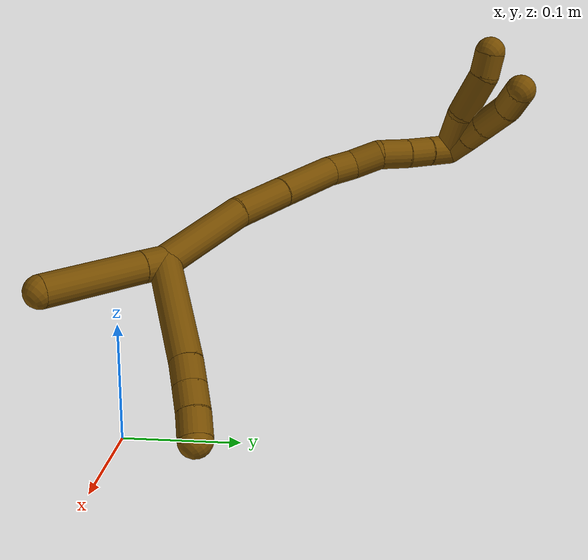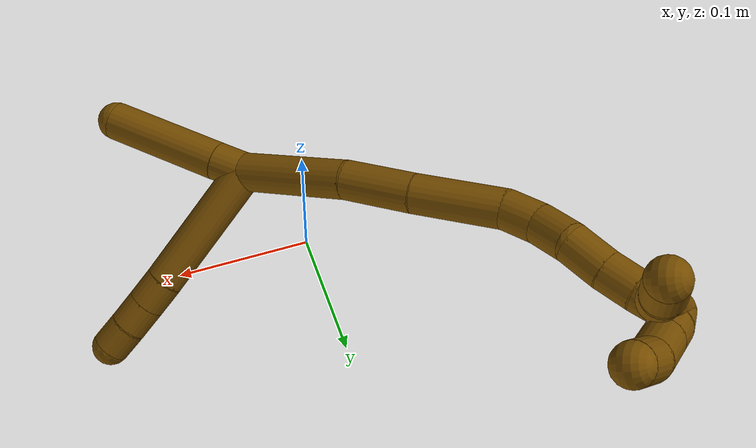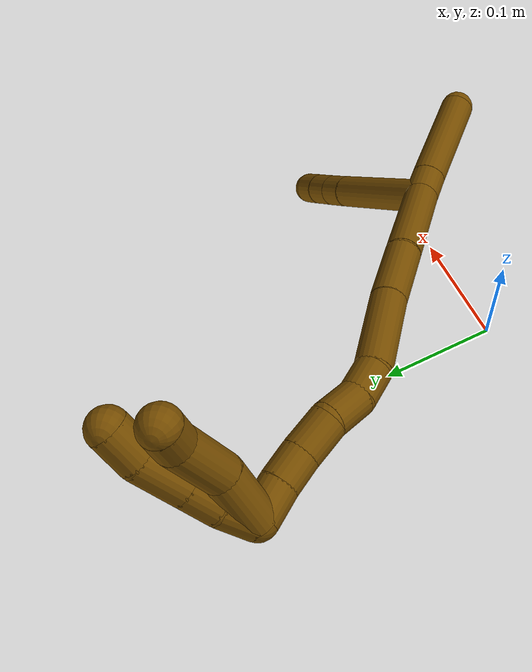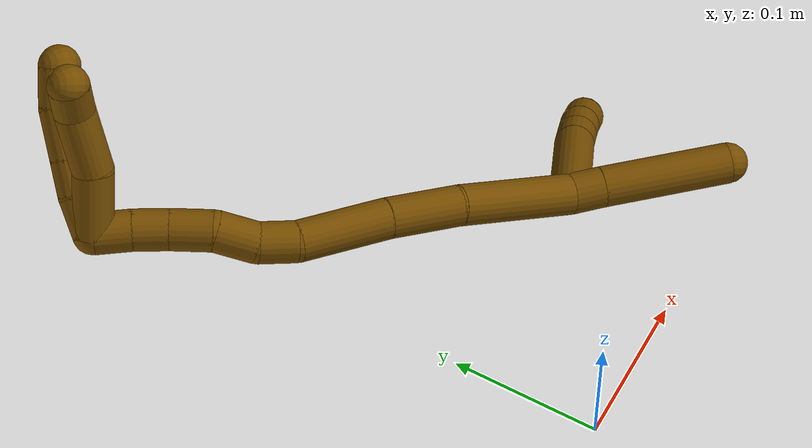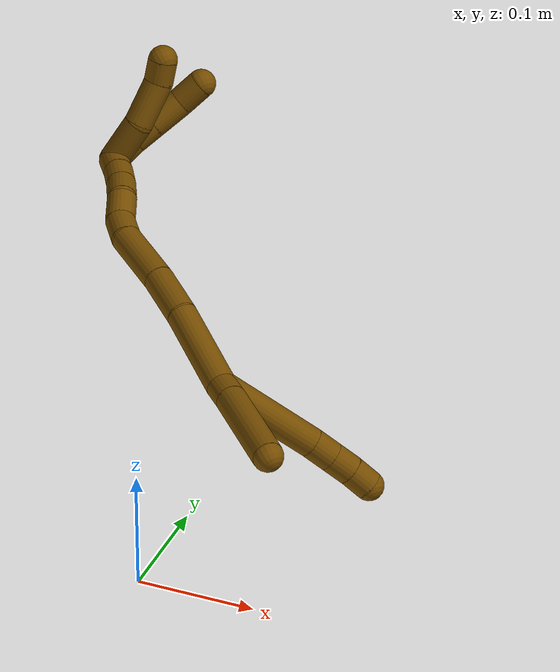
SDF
<sdf version="1.7">
 <world name="default">
  <model name="photoneo_s_sensor">
   <static>1</static>
   <pose>0 0 2 1.57079 1.57079 3.14159</pose>
   <link name="link">
    <inertial><mass>0.1</mass></inertial>
    <sensor name="sensor" type="depth">
     <update_rate>30</update_rate>
     <camera>
      <horizontal_fov>1.22</horizontal_fov>
      <image><width>1920</width><height>1200</height><format>B8G8R8</format></image>
      <clip><near>0.1</near><far>4</far></clip>
      <depth_camera><output>points</output></depth_camera>
     </camera>
     <plugin name="camera_plugin" filename="libgazebo_ros_depth_camera.so">
      <baseline>0.2</baseline>
      <alwaysOn>1</alwaysOn>
      <updateRate>0.0</updateRate>
      <cameraName>camera_ir</cameraName>
      <imageTopicName>/camera/color/image_raw</imageTopicName>
      <cameraInfoTopicName>/camera/color/camera_info</cameraInfoTopicName>
      <depthImageTopicName>/camera/depth/image_raw</depthImageTopicName>
      <depthImageCameraInfoTopicName>/camera/depth/camera_info</depthImageCameraInfoTopicName>
      <pointCloudTopicName>/camera/depth/points</pointCloudTopicName>
      <frameName>fr_optical</frameName>
      <pointCloudCutoff>0.1</pointCloudCutoff>
      <pointCloudCutoffMax>2.0</pointCloudCutoffMax>
      <distortionK1>0</distortionK1>
      <distortionK2>0</distortionK2>
      <distortionK3>0</distortionK3>
      <distortionT1>0</distortionT1>
      <distortionT2>0</distortionT2>
      <CxPrime>0</CxPrime>
      <Cx>0</Cx>
      <Cy>0</Cy>
      <focalLength>0</focalLength>
      <hackBaseline>0</hackBaseline>
     </plugin>
    </sensor>
   </link>
  </model>
  <model name="bin">
   <static>1</static>
   <link name="bottom">
    <collision name="collision-bottom">
     <pose>0 0 -0.01 0 -0 0</pose>
     <geometry><box><size>0.8 0.6 0.02</size></box></geometry>
     <surface>
      <friction><ode><mu>100</mu><mu2>100</mu2></ode></friction>
      <contact><collide_bitmask>65535</collide_bitmask></contact>
     </surface>
    </collision>
   </link>
   <link name="west_wall">
    <collision name="collision-west_wall">
     <pose>-0.41 0 0.1 0 -0 0</pose>
     <geometry><box><size>0.02 0.6 0.2</size></box></geometry>
     <surface>
      <friction><ode><mu>100</mu><mu2>100</mu2></ode></friction>
      <contact><collide_bitmask>65535</collide_bitmask></contact>
     </surface>
    </collision>
   </link>
   <link name="east_wall">
    <collision name="collision-east_wall">
     <pose>0.41 0 0.1 0 -0 0</pose>
     <geometry><box><size>0.02 0.6 0.2</size></box></geometry>
     <surface>
      <friction><ode><mu>100</mu><mu2>100</mu2></ode></friction>
      <contact><collide_bitmask>65535</collide_bitmask></contact>
     </surface>
    </collision>
   </link>
   <link name="south_wall">
    <collision name="collision-south_wall">
     <pose>0 -0.31 0.1 0 -0 0</pose>
     <geometry><box><size>0.8 0.02 0.2</size></box></geometry>
     <surface>
      <friction><ode><mu>100</mu><mu2>100</mu2></ode></friction>
      <contact><collide_bitmask>65535</collide_bitmask></contact>
     </surface>
    </collision>
   </link>
   <link name="north_wall">
    <collision name="collision-north_wall">
     <pose>0 0.31 0.1 0 -0 0</pose>
     <geometry><box><size>0.8 0.02 0.2</size></box></geometry>
     <surface>
      <friction><ode><mu>100</mu><mu2>100</mu2></ode></friction>
      <contact><collide_bitmask>65535</collide_bitmask></contact>
     </surface>
    </collision>
   </link>
  </model>
  <model name="12">
   <static>0</static>
   <link name="12">
    <collision name="collision-cylinder-e_1_2_8">
     <pose>0.00544 0.033603 -0.028979 -2.28244 0.122 -0.265079</pose>
     <geometry><cylinder><radius>0.0125</radius><length>0.089409</length></cylinder></geometry>
     <surface>
      <friction><ode><mu>1.16</mu><mu2>1.16</mu2><slip1>0</slip1><slip2>0</slip2></ode></friction>
      <contact><ode><kp>1e+06</kp><kd>1</kd><max_vel>0</max_vel><min_depth>0.001</min_depth></ode></contact>
     </surface>
    </collision>
    <visual name="visual-cylinder-e_1_2_8">
     <pose>0.00544 0.033603 -0.028979 -2.28244 0.122 -0.265079</pose>
     <geometry><cylinder><radius>0.0125</radius><length>0.089409</length></cylinder></geometry>
     <material><ambient>0.466667 0.301961 0 1</ambient></material>
    </visual>
    <collision name="collision-cylinder-e_2_8_9">
     <pose>0.01185 0.074506 -0.064991 -2.33757 0.095315 -0.223419</pose>
     <geometry><cylinder><radius>0.0125</radius><length>0.020369</length></cylinder></geometry>
     <surface>
      <friction><ode><mu>1.16</mu><mu2>1.16</mu2><slip1>0</slip1><slip2>0</slip2></ode></friction>
      <contact><ode><kp>1e+06</kp><kd>1</kd><max_vel>0</max_vel><min_depth>0.001</min_depth></ode></contact>
     </surface>
    </collision>
    <visual name="visual-cylinder-e_2_8_9">
     <pose>0.01185 0.074506 -0.064991 -2.33757 0.095315 -0.223419</pose>
     <geometry><cylinder><radius>0.0125</radius><length>0.020369</length></cylinder></geometry>
     <material><ambient>0.466667 0.301961 0 1</ambient></material>
    </visual>
    <collision name="collision-cylinder-e_3_9_10">
     <pose>0.013836 0.089009 -0.079028 -2.34219 0.100868 -0.237848</pose>
     <geometry><cylinder><radius>0.0125</radius><length>0.020192</length></cylinder></geometry>
     <surface>
      <friction><ode><mu>1.16</mu><mu2>1.16</mu2><slip1>0</slip1><slip2>0</slip2></ode></friction>
      <contact><ode><kp>1e+06</kp><kd>1</kd><max_vel>0</max_vel><min_depth>0.001</min_depth></ode></contact>
     </surface>
    </collision>
    <visual name="visual-cylinder-e_3_9_10">
     <pose>0.013836 0.089009 -0.079028 -2.34219 0.100868 -0.237848</pose>
     <geometry><cylinder><radius>0.0125</radius><length>0.020192</length></cylinder></geometry>
     <material><ambient>0.466667 0.301961 0 1</ambient></material>
    </visual>
    <collision name="collision-cylinder-e_4_10_6">
     <pose>0.015405 0.102946 -0.093421 -2.40257 0.055185 -0.142282</pose>
     <geometry><cylinder><radius>0.0125</radius><length>0.02003</length></cylinder></geometry>
     <surface>
      <friction><ode><mu>1.16</mu><mu2>1.16</mu2><slip1>0</slip1><slip2>0</slip2></ode></friction>
      <contact><ode><kp>1e+06</kp><kd>1</kd><max_vel>0</max_vel><min_depth>0.001</min_depth></ode></contact>
     </surface>
    </collision>
    <visual name="visual-cylinder-e_4_10_6">
     <pose>0.015405 0.102946 -0.093421 -2.40257 0.055185 -0.142282</pose>
     <geometry><cylinder><radius>0.0125</radius><length>0.02003</length></cylinder></geometry>
     <material><ambient>0.466667 0.301961 0 1</ambient></material>
    </visual>
    <collision name="collision-cylinder-e_1_2_11">
     <pose>0.00318 -0.003927 -0.008823 2.7228 0.318071 1.29305</pose>
     <geometry><cylinder><radius>0.0125</radius><length>0.020335</length></cylinder></geometry>
     <surface>
      <friction><ode><mu>1.16</mu><mu2>1.16</mu2><slip1>0</slip1><slip2>0</slip2></ode></friction>
      <contact><ode><kp>1e+06</kp><kd>1</kd><max_vel>0</max_vel><min_depth>0.001</min_depth></ode></contact>
     </surface>
    </collision>
    <visual name="visual-cylinder-e_1_2_11">
     <pose>0.00318 -0.003927 -0.008823 2.7228 0.318071 1.29305</pose>
     <geometry><cylinder><radius>0.0125</radius><length>0.020335</length></cylinder></geometry>
     <material><ambient>0.466667 0.301961 0 1</ambient></material>
    </visual>
    <collision name="collision-cylinder-e_2_11_5">
     <pose>0.017625 -0.023598 -0.052458 2.71686 0.286723 1.17991</pose>
     <geometry><cylinder><radius>0.0125</radius><length>0.079665</length></cylinder></geometry>
     <surface>
      <friction><ode><mu>1.16</mu><mu2>1.16</mu2><slip1>0</slip1><slip2>0</slip2></ode></friction>
      <contact><ode><kp>1e+06</kp><kd>1</kd><max_vel>0</max_vel><min_depth>0.001</min_depth></ode></contact>
     </surface>
    </collision>
    <visual name="visual-cylinder-e_2_11_5">
     <pose>0.017625 -0.023598 -0.052458 2.71686 0.286723 1.17991</pose>
     <geometry><cylinder><radius>0.0125</radius><length>0.079665</length></cylinder></geometry>
     <material><ambient>0.466667 0.301961 0 1</ambient></material>
    </visual>
    <collision name="collision-cylinder-e_1_2_12">
     <pose>-0.00408 0.005874 0.037651 -0.154755 -0.106652 0.008277</pose>
     <geometry><cylinder><radius>0.0125</radius><length>0.076648</length></cylinder></geometry>
     <surface>
      <friction><ode><mu>1.16</mu><mu2>1.16</mu2><slip1>0</slip1><slip2>0</slip2></ode></friction>
      <contact><ode><kp>1e+06</kp><kd>1</kd><max_vel>0</max_vel><min_depth>0.001</min_depth></ode></contact>
     </surface>
    </collision>
    <visual name="visual-cylinder-e_1_2_12">
     <pose>-0.00408 0.005874 0.037651 -0.154755 -0.106652 0.008277</pose>
     <geometry><cylinder><radius>0.0125</radius><length>0.076648</length></cylinder></geometry>
     <material><ambient>0.466667 0.301961 0 1</ambient></material>
    </visual>
    <collision name="collision-cylinder-e_2_12_13">
     <pose>-0.013119 0.017421 0.097013 -0.255629 -0.217517 0.028063</pose>
     <geometry><cylinder><radius>0.0125</radius><length>0.045963</length></cylinder></geometry>
     <surface>
      <friction><ode><mu>1.16</mu><mu2>1.16</mu2><slip1>0</slip1><slip2>0</slip2></ode></friction>
      <contact><ode><kp>1e+06</kp><kd>1</kd><max_vel>0</max_vel><min_depth>0.001</min_depth></ode></contact>
     </surface>
    </collision>
    <visual name="visual-cylinder-e_2_12_13">
     <pose>-0.013119 0.017421 0.097013 -0.255629 -0.217517 0.028063</pose>
     <geometry><cylinder><radius>0.0125</radius><length>0.045963</length></cylinder></geometry>
     <material><ambient>0.466667 0.301961 0 1</ambient></material>
    </visual>
    <collision name="collision-cylinder-e_3_13_14">
     <pose>-0.026117 0.029329 0.145794 -0.226349 -0.28169 0.032228</pose>
     <geometry><cylinder><radius>0.0125</radius><length>0.057836</length></cylinder></geometry>
     <surface>
      <friction><ode><mu>1.16</mu><mu2>1.16</mu2><slip1>0</slip1><slip2>0</slip2></ode></friction>
      <contact><ode><kp>1e+06</kp><kd>1</kd><max_vel>0</max_vel><min_depth>0.001</min_depth></ode></contact>
     </surface>
    </collision>
    <visual name="visual-cylinder-e_3_13_14">
     <pose>-0.026117 0.029329 0.145794 -0.226349 -0.28169 0.032228</pose>
     <geometry><cylinder><radius>0.0125</radius><length>0.057836</length></cylinder></geometry>
     <material><ambient>0.466667 0.301961 0 1</ambient></material>
    </visual>
    <collision name="collision-cylinder-e_4_14_15">
     <pose>-0.035682 0.040624 0.183284 -0.452111 -0.131002 0.03017</pose>
     <geometry><cylinder><radius>0.0125</radius><length>0.023369</length></cylinder></geometry>
     <surface>
      <friction><ode><mu>1.16</mu><mu2>1.16</mu2><slip1>0</slip1><slip2>0</slip2></ode></friction>
      <contact><ode><kp>1e+06</kp><kd>1</kd><max_vel>0</max_vel><min_depth>0.001</min_depth></ode></contact>
     </surface>
    </collision>
    <visual name="visual-cylinder-e_4_14_15">
     <pose>-0.035682 0.040624 0.183284 -0.452111 -0.131002 0.03017</pose>
     <geometry><cylinder><radius>0.0125</radius><length>0.023369</length></cylinder></geometry>
     <material><ambient>0.466667 0.301961 0 1</ambient></material>
    </visual>
    <collision name="collision-cylinder-e_5_15_16">
     <pose>-0.035171 0.05223 0.204614 -0.540317 0.158779 -0.044056</pose>
     <geometry><cylinder><radius>0.0125</radius><length>0.025769</length></cylinder></geometry>
     <surface>
      <friction><ode><mu>1.16</mu><mu2>1.16</mu2><slip1>0</slip1><slip2>0</slip2></ode></friction>
      <contact><ode><kp>1e+06</kp><kd>1</kd><max_vel>0</max_vel><min_depth>0.001</min_depth></ode></contact>
     </surface>
    </collision>
    <visual name="visual-cylinder-e_5_15_16">
     <pose>-0.035171 0.05223 0.204614 -0.540317 0.158779 -0.044056</pose>
     <geometry><cylinder><radius>0.0125</radius><length>0.025769</length></cylinder></geometry>
     <material><ambient>0.466667 0.301961 0 1</ambient></material>
    </visual>
    <collision name="collision-cylinder-e_6_16_17">
     <pose>-0.034932 0.067144 0.225388 -0.70364 -0.138125 0.050774</pose>
     <geometry><cylinder><radius>0.0125</radius><length>0.026121</length></cylinder></geometry>
     <surface>
      <friction><ode><mu>1.16</mu><mu2>1.16</mu2><slip1>0</slip1><slip2>0</slip2></ode></friction>
      <contact><ode><kp>1e+06</kp><kd>1</kd><max_vel>0</max_vel><min_depth>0.001</min_depth></ode></contact>
     </surface>
    </collision>
    <visual name="visual-cylinder-e_6_16_17">
     <pose>-0.034932 0.067144 0.225388 -0.70364 -0.138125 0.050774</pose>
     <geometry><cylinder><radius>0.0125</radius><length>0.026121</length></cylinder></geometry>
     <material><ambient>0.466667 0.301961 0 1</ambient></material>
    </visual>
    <collision name="collision-cylinder-e_7_17_18">
     <pose>-0.038482 0.081705 0.243959 -0.618123 -0.162507 0.05199</pose>
     <geometry><cylinder><radius>0.0125</radius><length>0.021652</length></cylinder></geometry>
     <surface>
      <friction><ode><mu>1.16</mu><mu2>1.16</mu2><slip1>0</slip1><slip2>0</slip2></ode></friction>
      <contact><ode><kp>1e+06</kp><kd>1</kd><max_vel>0</max_vel><min_depth>0.001</min_depth></ode></contact>
     </surface>
    </collision>
    <visual name="visual-cylinder-e_7_17_18">
     <pose>-0.038482 0.081705 0.243959 -0.618123 -0.162507 0.05199</pose>
     <geometry><cylinder><radius>0.0125</radius><length>0.021652</length></cylinder></geometry>
     <material><ambient>0.466667 0.301961 0 1</ambient></material>
    </visual>
    <collision name="collision-cylinder-e_8_18_1">
     <pose>-0.042797 0.093826 0.261962 -0.567813 -0.228408 0.066913</pose>
     <geometry><cylinder><radius>0.0125</radius><length>0.02264</length></cylinder></geometry>
     <surface>
      <friction><ode><mu>1.16</mu><mu2>1.16</mu2><slip1>0</slip1><slip2>0</slip2></ode></friction>
      <contact><ode><kp>1e+06</kp><kd>1</kd><max_vel>0</max_vel><min_depth>0.001</min_depth></ode></contact>
     </surface>
    </collision>
    <visual name="visual-cylinder-e_8_18_1">
     <pose>-0.042797 0.093826 0.261962 -0.567813 -0.228408 0.066913</pose>
     <geometry><cylinder><radius>0.0125</radius><length>0.02264</length></cylinder></geometry>
     <material><ambient>0.466667 0.301961 0 1</ambient></material>
    </visual>
    <collision name="collision-cylinder-e_1_1_19">
     <pose>-0.025673 0.098174 0.275466 0.35947 1.34628 0.287759</pose>
     <geometry><cylinder><radius>0.0125</radius><length>0.040388</length></cylinder></geometry>
     <surface>
      <friction><ode><mu>1.16</mu><mu2>1.16</mu2><slip1>0</slip1><slip2>0</slip2></ode></friction>
      <contact><ode><kp>1e+06</kp><kd>1</kd><max_vel>0</max_vel><min_depth>0.001</min_depth></ode></contact>
     </surface>
    </collision>
    <visual name="visual-cylinder-e_1_1_19">
     <pose>-0.025673 0.098174 0.275466 0.35947 1.34628 0.287759</pose>
     <geometry><cylinder><radius>0.0125</radius><length>0.040388</length></cylinder></geometry>
     <material><ambient>0.466667 0.301961 0 1</ambient></material>
    </visual>
    <collision name="collision-cylinder-e_2_19_20">
     <pose>0.011665 0.096995 0.288564 -0.045208 1.10382 -0.027839</pose>
     <geometry><cylinder><radius>0.0125</radius><length>0.039533</length></cylinder></geometry>
     <surface>
      <friction><ode><mu>1.16</mu><mu2>1.16</mu2><slip1>0</slip1><slip2>0</slip2></ode></friction>
      <contact><ode><kp>1e+06</kp><kd>1</kd><max_vel>0</max_vel><min_depth>0.001</min_depth></ode></contact>
     </surface>
    </collision>
    <visual name="visual-cylinder-e_2_19_20">
     <pose>0.011665 0.096995 0.288564 -0.045208 1.10382 -0.027839</pose>
     <geometry><cylinder><radius>0.0125</radius><length>0.039533</length></cylinder></geometry>
     <material><ambient>0.466667 0.301961 0 1</ambient></material>
    </visual>
    <collision name="collision-cylinder-e_3_20_4">
     <pose>0.03758 0.09465 0.302446 0.502977 0.967178 0.268247</pose>
     <geometry><cylinder><radius>0.0125</radius><length>0.020079</length></cylinder></geometry>
     <surface>
      <friction><ode><mu>1.16</mu><mu2>1.16</mu2><slip1>0</slip1><slip2>0</slip2></ode></friction>
      <contact><ode><kp>1e+06</kp><kd>1</kd><max_vel>0</max_vel><min_depth>0.001</min_depth></ode></contact>
     </surface>
    </collision>
    <visual name="visual-cylinder-e_3_20_4">
     <pose>0.03758 0.09465 0.302446 0.502977 0.967178 0.268247</pose>
     <geometry><cylinder><radius>0.0125</radius><length>0.020079</length></cylinder></geometry>
     <material><ambient>0.466667 0.301961 0 1</ambient></material>
    </visual>
    <collision name="collision-cylinder-e_1_1_21">
     <pose>-0.034904 0.10472 0.274672 -0.968344 1.04808 -0.590156</pose>
     <geometry><cylinder><radius>0.0125</radius><length>0.024136</length></cylinder></geometry>
     <surface>
      <friction><ode><mu>1.16</mu><mu2>1.16</mu2><slip1>0</slip1><slip2>0</slip2></ode></friction>
      <contact><ode><kp>1e+06</kp><kd>1</kd><max_vel>0</max_vel><min_depth>0.001</min_depth></ode></contact>
     </surface>
    </collision>
    <visual name="visual-cylinder-e_1_1_21">
     <pose>-0.034904 0.10472 0.274672 -0.968344 1.04808 -0.590156</pose>
     <geometry><cylinder><radius>0.0125</radius><length>0.024136</length></cylinder></geometry>
     <material><ambient>0.466667 0.301961 0 1</ambient></material>
    </visual>
    <collision name="collision-cylinder-e_2_21_22">
     <pose>-0.014729 0.113682 0.27981 -1.16368 1.14957 -0.805572</pose>
     <geometry><cylinder><radius>0.0125</radius><length>0.021298</length></cylinder></geometry>
     <surface>
      <friction><ode><mu>1.16</mu><mu2>1.16</mu2><slip1>0</slip1><slip2>0</slip2></ode></friction>
      <contact><ode><kp>1e+06</kp><kd>1</kd><max_vel>0</max_vel><min_depth>0.001</min_depth></ode></contact>
     </surface>
    </collision>
    <visual name="visual-cylinder-e_2_21_22">
     <pose>-0.014729 0.113682 0.27981 -1.16368 1.14957 -0.805572</pose>
     <geometry><cylinder><radius>0.0125</radius><length>0.021298</length></cylinder></geometry>
     <material><ambient>0.466667 0.301961 0 1</ambient></material>
    </visual>
    <collision name="collision-cylinder-e_3_22_23">
     <pose>0.008844 0.123397 0.284006 -1.16262 1.1483 -0.803747</pose>
     <geometry><cylinder><radius>0.0125</radius><length>0.030382</length></cylinder></geometry>
     <surface>
      <friction><ode><mu>1.16</mu><mu2>1.16</mu2><slip1>0</slip1><slip2>0</slip2></ode></friction>
      <contact><ode><kp>1e+06</kp><kd>1</kd><max_vel>0</max_vel><min_depth>0.001</min_depth></ode></contact>
     </surface>
    </collision>
    <visual name="visual-cylinder-e_3_22_23">
     <pose>0.008844 0.123397 0.284006 -1.16262 1.1483 -0.803747</pose>
     <geometry><cylinder><radius>0.0125</radius><length>0.030382</length></cylinder></geometry>
     <material><ambient>0.466667 0.301961 0 1</ambient></material>
    </visual>
    <collision name="collision-cylinder-e_4_23_3">
     <pose>0.034649 0.130741 0.287364 -1.07229 1.41702 -0.941953</pose>
     <geometry><cylinder><radius>0.0125</radius><length>0.024185</length></cylinder></geometry>
     <surface>
      <friction><ode><mu>1.16</mu><mu2>1.16</mu2><slip1>0</slip1><slip2>0</slip2></ode></friction>
      <contact><ode><kp>1e+06</kp><kd>1</kd><max_vel>0</max_vel><min_depth>0.001</min_depth></ode></contact>
     </surface>
    </collision>
    <visual name="visual-cylinder-e_4_23_3">
     <pose>0.034649 0.130741 0.287364 -1.07229 1.41702 -0.941953</pose>
     <geometry><cylinder><radius>0.0125</radius><length>0.024185</length></cylinder></geometry>
     <material><ambient>0.466667 0.301961 0 1</ambient></material>
    </visual>
    <collision name="collision-sphere-3">
     <pose>0.046598 0.132368 0.28825 0 -0 0</pose>
     <geometry><sphere><radius>0.0125</radius></sphere></geometry>
     <surface>
      <friction><ode><mu>1.16</mu><mu2>1.16</mu2><slip1>0</slip1><slip2>0</slip2></ode></friction>
      <contact><ode><kp>1e+06</kp><kd>1</kd><max_vel>0</max_vel><min_depth>0.001</min_depth></ode></contact>
     </surface>
    </collision>
    <visual name="visual-sphere-3">
     <pose>0.046598 0.132368 0.28825 0 -0 0</pose>
     <geometry><sphere><radius>0.0125</radius></sphere></geometry>
     <material><ambient>0.466667 0.301961 0 1</ambient></material>
    </visual>
    <collision name="collision-sphere-23">
     <pose>0.022699 0.129114 0.286479 0 -0 0</pose>
     <geometry><sphere><radius>0.0125</radius></sphere></geometry>
     <surface>
      <friction><ode><mu>1.16</mu><mu2>1.16</mu2><slip1>0</slip1><slip2>0</slip2></ode></friction>
      <contact><ode><kp>1e+06</kp><kd>1</kd><max_vel>0</max_vel><min_depth>0.001</min_depth></ode></contact>
     </surface>
    </collision>
    <visual name="visual-sphere-23">
     <pose>0.022699 0.129114 0.286479 0 -0 0</pose>
     <geometry><sphere><radius>0.0125</radius></sphere></geometry>
     <material><ambient>0.466667 0.301961 0 1</ambient></material>
    </visual>
    <collision name="collision-sphere-22">
     <pose>-0.005011 0.11768 0.281534 0 -0 0</pose>
     <geometry><sphere><radius>0.0125</radius></sphere></geometry>
     <surface>
      <friction><ode><mu>1.16</mu><mu2>1.16</mu2><slip1>0</slip1><slip2>0</slip2></ode></friction>
      <contact><ode><kp>1e+06</kp><kd>1</kd><max_vel>0</max_vel><min_depth>0.001</min_depth></ode></contact>
     </surface>
    </collision>
    <visual name="visual-sphere-22">
     <pose>-0.005011 0.11768 0.281534 0 -0 0</pose>
     <geometry><sphere><radius>0.0125</radius></sphere></geometry>
     <material><ambient>0.466667 0.301961 0 1</ambient></material>
    </visual>
    <collision name="collision-sphere-21">
     <pose>-0.024447 0.109684 0.278086 0 -0 0</pose>
     <geometry><sphere><radius>0.0125</radius></sphere></geometry>
     <surface>
      <friction><ode><mu>1.16</mu><mu2>1.16</mu2><slip1>0</slip1><slip2>0</slip2></ode></friction>
      <contact><ode><kp>1e+06</kp><kd>1</kd><max_vel>0</max_vel><min_depth>0.001</min_depth></ode></contact>
     </surface>
    </collision>
    <visual name="visual-sphere-21">
     <pose>-0.024447 0.109684 0.278086 0 -0 0</pose>
     <geometry><sphere><radius>0.0125</radius></sphere></geometry>
     <material><ambient>0.466667 0.301961 0 1</ambient></material>
    </visual>
    <collision name="collision-sphere-4">
     <pose>0.045846 0.091903 0.307439 0 -0 0</pose>
     <geometry><sphere><radius>0.0125</radius></sphere></geometry>
     <surface>
      <friction><ode><mu>1.16</mu><mu2>1.16</mu2><slip1>0</slip1><slip2>0</slip2></ode></friction>
      <contact><ode><kp>1e+06</kp><kd>1</kd><max_vel>0</max_vel><min_depth>0.001</min_depth></ode></contact>
     </surface>
    </collision>
    <visual name="visual-sphere-4">
     <pose>0.045846 0.091903 0.307439 0 -0 0</pose>
     <geometry><sphere><radius>0.0125</radius></sphere></geometry>
     <material><ambient>0.466667 0.301961 0 1</ambient></material>
    </visual>
    <collision name="collision-sphere-20">
     <pose>0.029315 0.097397 0.297453 0 -0 0</pose>
     <geometry><sphere><radius>0.0125</radius></sphere></geometry>
     <surface>
      <friction><ode><mu>1.16</mu><mu2>1.16</mu2><slip1>0</slip1><slip2>0</slip2></ode></friction>
      <contact><ode><kp>1e+06</kp><kd>1</kd><max_vel>0</max_vel><min_depth>0.001</min_depth></ode></contact>
     </surface>
    </collision>
    <visual name="visual-sphere-20">
     <pose>0.029315 0.097397 0.297453 0 -0 0</pose>
     <geometry><sphere><radius>0.0125</radius></sphere></geometry>
     <material><ambient>0.466667 0.301961 0 1</ambient></material>
    </visual>
    <collision name="collision-sphere-11">
     <pose>0.00636 -0.007855 -0.017646 0 -0 0</pose>
     <geometry><sphere><radius>0.0125</radius></sphere></geometry>
     <surface>
      <friction><ode><mu>1.16</mu><mu2>1.16</mu2><slip1>0</slip1><slip2>0</slip2></ode></friction>
      <contact><ode><kp>1e+06</kp><kd>1</kd><max_vel>0</max_vel><min_depth>0.001</min_depth></ode></contact>
     </surface>
    </collision>
    <visual name="visual-sphere-11">
     <pose>0.00636 -0.007855 -0.017646 0 -0 0</pose>
     <geometry><sphere><radius>0.0125</radius></sphere></geometry>
     <material><ambient>0.466667 0.301961 0 1</ambient></material>
    </visual>
    <collision name="collision-sphere-6">
     <pose>0.015957 0.109681 -0.100812 0 -0 0</pose>
     <geometry><sphere><radius>0.0125</radius></sphere></geometry>
     <surface>
      <friction><ode><mu>1.16</mu><mu2>1.16</mu2><slip1>0</slip1><slip2>0</slip2></ode></friction>
      <contact><ode><kp>1e+06</kp><kd>1</kd><max_vel>0</max_vel><min_depth>0.001</min_depth></ode></contact>
     </surface>
    </collision>
    <visual name="visual-sphere-6">
     <pose>0.015957 0.109681 -0.100812 0 -0 0</pose>
     <geometry><sphere><radius>0.0125</radius></sphere></geometry>
     <material><ambient>0.466667 0.301961 0 1</ambient></material>
    </visual>
    <collision name="collision-sphere-10">
     <pose>0.014853 0.096211 -0.08603 0 -0 0</pose>
     <geometry><sphere><radius>0.0125</radius></sphere></geometry>
     <surface>
      <friction><ode><mu>1.16</mu><mu2>1.16</mu2><slip1>0</slip1><slip2>0</slip2></ode></friction>
      <contact><ode><kp>1e+06</kp><kd>1</kd><max_vel>0</max_vel><min_depth>0.001</min_depth></ode></contact>
     </surface>
    </collision>
    <visual name="visual-sphere-10">
     <pose>0.014853 0.096211 -0.08603 0 -0 0</pose>
     <geometry><sphere><radius>0.0125</radius></sphere></geometry>
     <material><ambient>0.466667 0.301961 0 1</ambient></material>
    </visual>
    <collision name="collision-sphere-9">
     <pose>0.012819 0.081808 -0.072025 0 -0 0</pose>
     <geometry><sphere><radius>0.0125</radius></sphere></geometry>
     <surface>
      <friction><ode><mu>1.16</mu><mu2>1.16</mu2><slip1>0</slip1><slip2>0</slip2></ode></friction>
      <contact><ode><kp>1e+06</kp><kd>1</kd><max_vel>0</max_vel><min_depth>0.001</min_depth></ode></contact>
     </surface>
    </collision>
    <visual name="visual-sphere-9">
     <pose>0.012819 0.081808 -0.072025 0 -0 0</pose>
     <geometry><sphere><radius>0.0125</radius></sphere></geometry>
     <material><ambient>0.466667 0.301961 0 1</ambient></material>
    </visual>
    <collision name="collision-sphere-2">
     <geometry><sphere><radius>0.0125</radius></sphere></geometry>
     <surface>
      <friction><ode><mu>1.16</mu><mu2>1.16</mu2><slip1>0</slip1><slip2>0</slip2></ode></friction>
      <contact><ode><kp>1e+06</kp><kd>1</kd><max_vel>0</max_vel><min_depth>0.001</min_depth></ode></contact>
     </surface>
    </collision>
    <visual name="visual-sphere-2">
     <geometry><sphere><radius>0.0125</radius></sphere></geometry>
     <material><ambient>0.466667 0.301961 0 1</ambient></material>
    </visual>
    <collision name="collision-sphere-19">
     <pose>-0.005985 0.096593 0.279674 0 -0 0</pose>
     <geometry><sphere><radius>0.0125</radius></sphere></geometry>
     <surface>
      <friction><ode><mu>1.16</mu><mu2>1.16</mu2><slip1>0</slip1><slip2>0</slip2></ode></friction>
      <contact><ode><kp>1e+06</kp><kd>1</kd><max_vel>0</max_vel><min_depth>0.001</min_depth></ode></contact>
     </surface>
    </collision>
    <visual name="visual-sphere-19">
     <pose>-0.005985 0.096593 0.279674 0 -0 0</pose>
     <geometry><sphere><radius>0.0125</radius></sphere></geometry>
     <material><ambient>0.466667 0.301961 0 1</ambient></material>
    </visual>
    <collision name="collision-sphere-8">
     <pose>0.010881 0.067205 -0.057957 0 -0 0</pose>
     <geometry><sphere><radius>0.0125</radius></sphere></geometry>
     <surface>
      <friction><ode><mu>1.16</mu><mu2>1.16</mu2><slip1>0</slip1><slip2>0</slip2></ode></friction>
      <contact><ode><kp>1e+06</kp><kd>1</kd><max_vel>0</max_vel><min_depth>0.001</min_depth></ode></contact>
     </surface>
    </collision>
    <visual name="visual-sphere-8">
     <pose>0.010881 0.067205 -0.057957 0 -0 0</pose>
     <geometry><sphere><radius>0.0125</radius></sphere></geometry>
     <material><ambient>0.466667 0.301961 0 1</ambient></material>
    </visual>
    <collision name="collision-sphere-5">
     <pose>0.02889 -0.039342 -0.087269 0 -0 0</pose>
     <geometry><sphere><radius>0.0125</radius></sphere></geometry>
     <surface>
      <friction><ode><mu>1.16</mu><mu2>1.16</mu2><slip1>0</slip1><slip2>0</slip2></ode></friction>
      <contact><ode><kp>1e+06</kp><kd>1</kd><max_vel>0</max_vel><min_depth>0.001</min_depth></ode></contact>
     </surface>
    </collision>
    <visual name="visual-sphere-5">
     <pose>0.02889 -0.039342 -0.087269 0 -0 0</pose>
     <geometry><sphere><radius>0.0125</radius></sphere></geometry>
     <material><ambient>0.466667 0.301961 0 1</ambient></material>
    </visual>
    <collision name="collision-sphere-12">
     <pose>-0.008159 0.011747 0.075302 0 -0 0</pose>
     <geometry><sphere><radius>0.0125</radius></sphere></geometry>
     <surface>
      <friction><ode><mu>1.16</mu><mu2>1.16</mu2><slip1>0</slip1><slip2>0</slip2></ode></friction>
      <contact><ode><kp>1e+06</kp><kd>1</kd><max_vel>0</max_vel><min_depth>0.001</min_depth></ode></contact>
     </surface>
    </collision>
    <visual name="visual-sphere-12">
     <pose>-0.008159 0.011747 0.075302 0 -0 0</pose>
     <geometry><sphere><radius>0.0125</radius></sphere></geometry>
     <material><ambient>0.466667 0.301961 0 1</ambient></material>
    </visual>
    <collision name="collision-sphere-13">
     <pose>-0.018078 0.023095 0.118724 0 -0 0</pose>
     <geometry><sphere><radius>0.0125</radius></sphere></geometry>
     <surface>
      <friction><ode><mu>1.16</mu><mu2>1.16</mu2><slip1>0</slip1><slip2>0</slip2></ode></friction>
      <contact><ode><kp>1e+06</kp><kd>1</kd><max_vel>0</max_vel><min_depth>0.001</min_depth></ode></contact>
     </surface>
    </collision>
    <visual name="visual-sphere-13">
     <pose>-0.018078 0.023095 0.118724 0 -0 0</pose>
     <geometry><sphere><radius>0.0125</radius></sphere></geometry>
     <material><ambient>0.466667 0.301961 0 1</ambient></material>
    </visual>
    <collision name="collision-sphere-14">
     <pose>-0.034156 0.035563 0.172863 0 -0 0</pose>
     <geometry><sphere><radius>0.0125</radius></sphere></geometry>
     <surface>
      <friction><ode><mu>1.16</mu><mu2>1.16</mu2><slip1>0</slip1><slip2>0</slip2></ode></friction>
      <contact><ode><kp>1e+06</kp><kd>1</kd><max_vel>0</max_vel><min_depth>0.001</min_depth></ode></contact>
     </surface>
    </collision>
    <visual name="visual-sphere-14">
     <pose>-0.034156 0.035563 0.172863 0 -0 0</pose>
     <geometry><sphere><radius>0.0125</radius></sphere></geometry>
     <material><ambient>0.466667 0.301961 0 1</ambient></material>
    </visual>
    <collision name="collision-sphere-15">
     <pose>-0.037208 0.045685 0.193704 0 -0 0</pose>
     <geometry><sphere><radius>0.0125</radius></sphere></geometry>
     <surface>
      <friction><ode><mu>1.16</mu><mu2>1.16</mu2><slip1>0</slip1><slip2>0</slip2></ode></friction>
      <contact><ode><kp>1e+06</kp><kd>1</kd><max_vel>0</max_vel><min_depth>0.001</min_depth></ode></contact>
     </surface>
    </collision>
    <visual name="visual-sphere-15">
     <pose>-0.037208 0.045685 0.193704 0 -0 0</pose>
     <geometry><sphere><radius>0.0125</radius></sphere></geometry>
     <material><ambient>0.466667 0.301961 0 1</ambient></material>
    </visual>
    <collision name="collision-sphere-16">
     <pose>-0.033134 0.058774 0.215525 0 -0 0</pose>
     <geometry><sphere><radius>0.0125</radius></sphere></geometry>
     <surface>
      <friction><ode><mu>1.16</mu><mu2>1.16</mu2><slip1>0</slip1><slip2>0</slip2></ode></friction>
      <contact><ode><kp>1e+06</kp><kd>1</kd><max_vel>0</max_vel><min_depth>0.001</min_depth></ode></contact>
     </surface>
    </collision>
    <visual name="visual-sphere-16">
     <pose>-0.033134 0.058774 0.215525 0 -0 0</pose>
     <geometry><sphere><radius>0.0125</radius></sphere></geometry>
     <material><ambient>0.466667 0.301961 0 1</ambient></material>
    </visual>
    <collision name="collision-sphere-17">
     <pose>-0.03673 0.075514 0.235252 0 -0 0</pose>
     <geometry><sphere><radius>0.0125</radius></sphere></geometry>
     <surface>
      <friction><ode><mu>1.16</mu><mu2>1.16</mu2><slip1>0</slip1><slip2>0</slip2></ode></friction>
      <contact><ode><kp>1e+06</kp><kd>1</kd><max_vel>0</max_vel><min_depth>0.001</min_depth></ode></contact>
     </surface>
    </collision>
    <visual name="visual-sphere-17">
     <pose>-0.03673 0.075514 0.235252 0 -0 0</pose>
     <geometry><sphere><radius>0.0125</radius></sphere></geometry>
     <material><ambient>0.466667 0.301961 0 1</ambient></material>
    </visual>
    <collision name="collision-sphere-18">
     <pose>-0.040234 0.087896 0.252666 0 -0 0</pose>
     <geometry><sphere><radius>0.0125</radius></sphere></geometry>
     <surface>
      <friction><ode><mu>1.16</mu><mu2>1.16</mu2><slip1>0</slip1><slip2>0</slip2></ode></friction>
      <contact><ode><kp>1e+06</kp><kd>1</kd><max_vel>0</max_vel><min_depth>0.001</min_depth></ode></contact>
     </surface>
    </collision>
    <visual name="visual-sphere-18">
     <pose>-0.040234 0.087896 0.252666 0 -0 0</pose>
     <geometry><sphere><radius>0.0125</radius></sphere></geometry>
     <material><ambient>0.466667 0.301961 0 1</ambient></material>
    </visual>
    <collision name="collision-sphere-1">
     <pose>-0.04536 0.099756 0.271258 0 -0 0</pose>
     <geometry><sphere><radius>0.0125</radius></sphere></geometry>
     <surface>
      <friction><ode><mu>1.16</mu><mu2>1.16</mu2><slip1>0</slip1><slip2>0</slip2></ode></friction>
      <contact><ode><kp>1e+06</kp><kd>1</kd><max_vel>0</max_vel><min_depth>0.001</min_depth></ode></contact>
     </surface>
    </collision>
    <visual name="visual-sphere-1">
     <pose>-0.04536 0.099756 0.271258 0 -0 0</pose>
     <geometry><sphere><radius>0.0125</radius></sphere></geometry>
     <material><ambient>0.466667 0.301961 0 1</ambient></material>
    </visual>
    <inertial>
     <pose>-0.00529 0.051828 0.116622 0 -0 0</pose>
     <mass>0.75</mass>
     <inertia>
      <ixx>0.000206</ixx>
      <ixy>0</ixy>
      <ixz>0</ixz>
      <iyy>8.7e-05</iyy>
      <iyz>0</iyz>
      <izz>-7.3e-05</izz>
     </inertia>
    </inertial>
   </link>
   <pose>0.051427 0.052465 0.168163 -0.757855 -0.798267 0.276267</pose>
  </model>
 </world>
</sdf>
